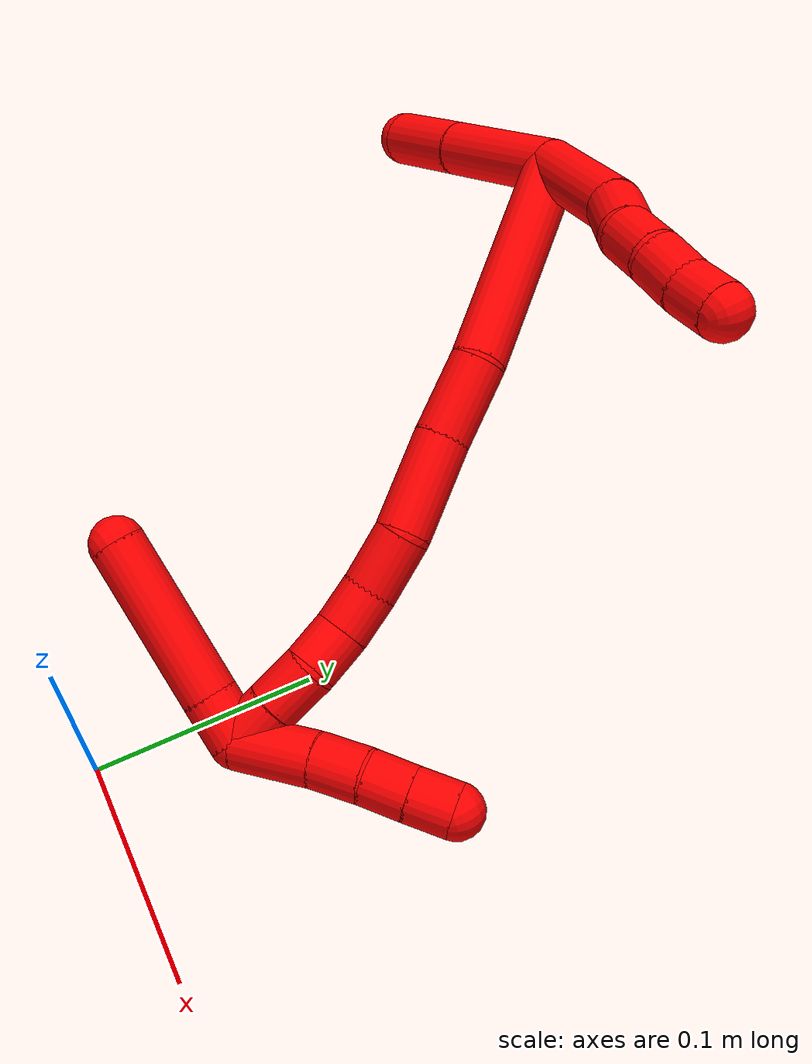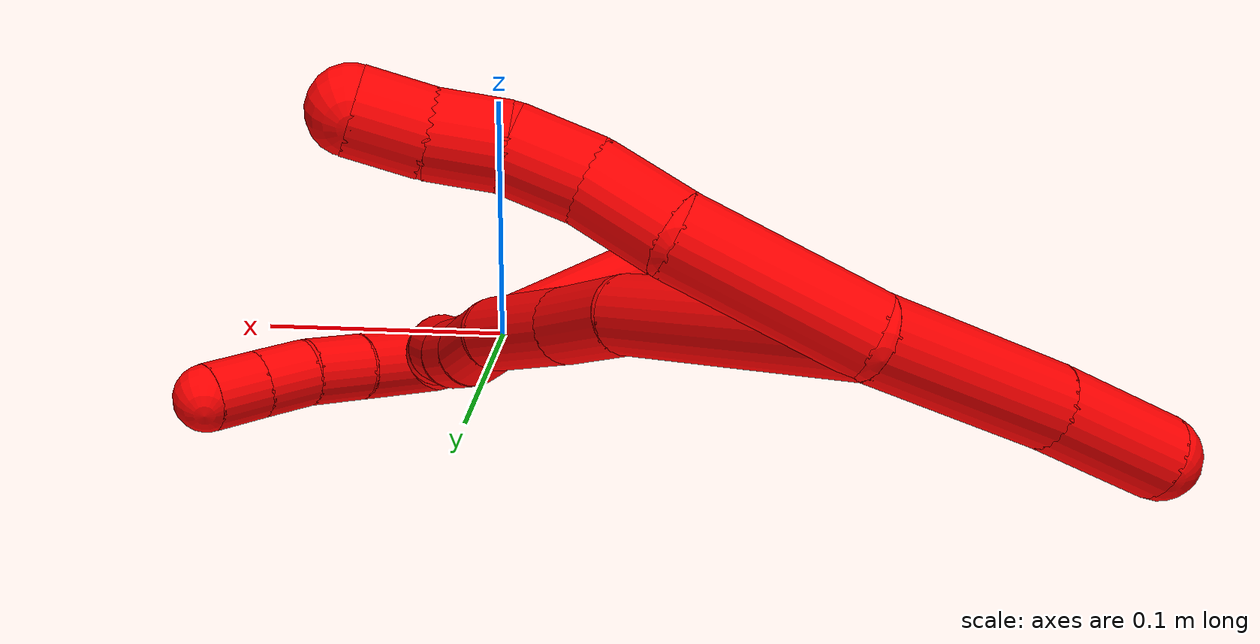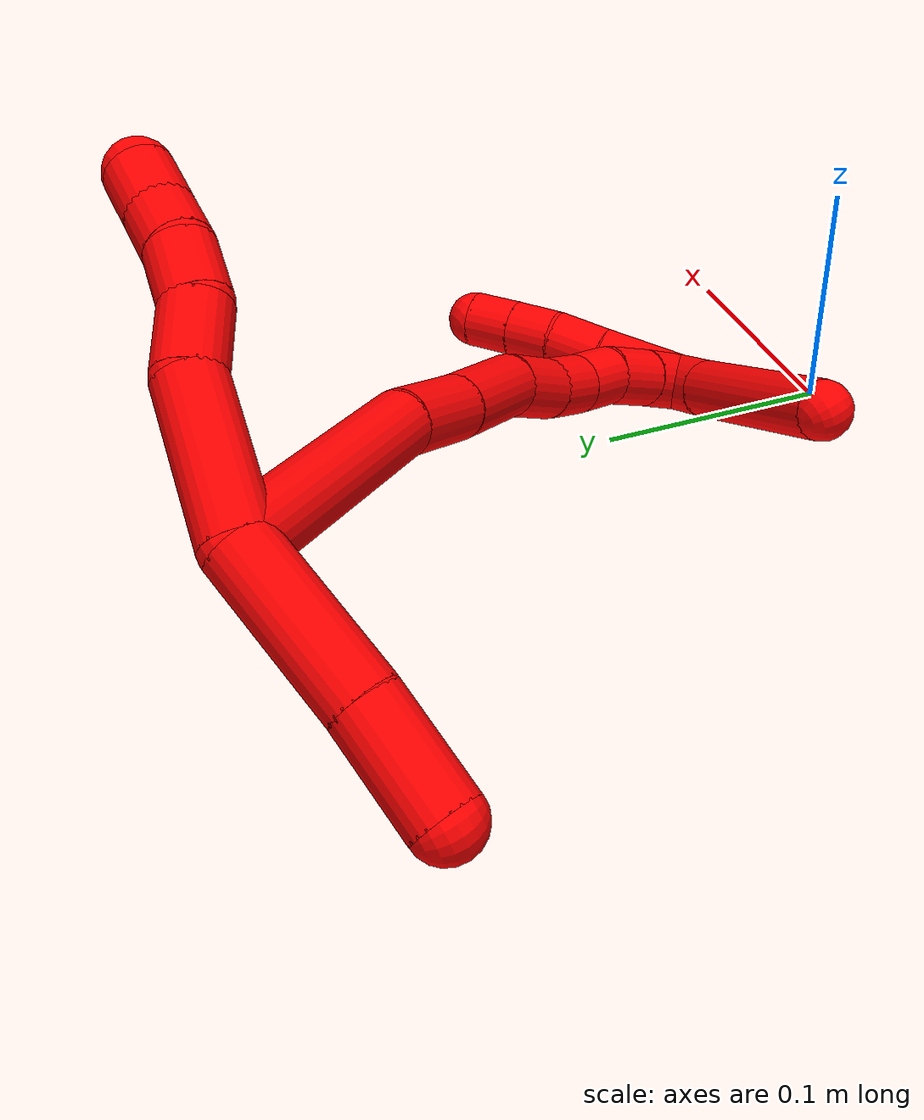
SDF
<sdf version="1.7">
 <world name="default">
  <model name="2">
   <static>0</static>
   <link name="2">
    <collision name="collision-cylinder-e_1_2_8">
     <pose>-0.000973 0.028131 -0.00752 -1.83202 -0.033415 0.043518</pose>
     <geometry><cylinder><radius>0.0125</radius><length>0.05827</length></cylinder></geometry>
     <surface>
      <friction><ode><mu>1.16</mu><mu2>1.16</mu2><slip1>0</slip1><slip2>0</slip2></ode></friction>
      <contact><ode><kp>1e+06</kp><kd>1</kd><max_vel>0</max_vel><min_depth>0.001</min_depth></ode></contact>
     </surface>
    </collision>
    <visual name="visual-cylinder-e_1_2_8">
     <pose>-0.000973 0.028131 -0.00752 -1.83202 -0.033415 0.043518</pose>
     <geometry><cylinder><radius>0.0125</radius><length>0.05827</length></cylinder></geometry>
     <material><ambient>1 0 0 1</ambient></material>
    </visual>
    <collision name="collision-cylinder-e_2_8_9">
     <pose>-0.002902 0.067425 -0.022447 -2.15658 -0.071163 0.132478</pose>
     <geometry><cylinder><radius>0.0125</radius><length>0.02686</length></cylinder></geometry>
     <surface>
      <friction><ode><mu>1.16</mu><mu2>1.16</mu2><slip1>0</slip1><slip2>0</slip2></ode></friction>
      <contact><ode><kp>1e+06</kp><kd>1</kd><max_vel>0</max_vel><min_depth>0.001</min_depth></ode></contact>
     </surface>
    </collision>
    <visual name="visual-cylinder-e_2_8_9">
     <pose>-0.002902 0.067425 -0.022447 -2.15658 -0.071163 0.132478</pose>
     <geometry><cylinder><radius>0.0125</radius><length>0.02686</length></cylinder></geometry>
     <material><ambient>1 0 0 1</ambient></material>
    </visual>
    <collision name="collision-cylinder-e_3_9_10">
     <pose>-0.005344 0.089792 -0.032908 -1.837 -0.12734 0.166552</pose>
     <geometry><cylinder><radius>0.0125</radius><length>0.023417</length></cylinder></geometry>
     <surface>
      <friction><ode><mu>1.16</mu><mu2>1.16</mu2><slip1>0</slip1><slip2>0</slip2></ode></friction>
      <contact><ode><kp>1e+06</kp><kd>1</kd><max_vel>0</max_vel><min_depth>0.001</min_depth></ode></contact>
     </surface>
    </collision>
    <visual name="visual-cylinder-e_3_9_10">
     <pose>-0.005344 0.089792 -0.032908 -1.837 -0.12734 0.166552</pose>
     <geometry><cylinder><radius>0.0125</radius><length>0.023417</length></cylinder></geometry>
     <material><ambient>1 0 0 1</ambient></material>
    </visual>
    <collision name="collision-cylinder-e_4_10_11">
     <pose>-0.010084 0.11074 -0.037347 -1.71189 -0.319242 0.366778</pose>
     <geometry><cylinder><radius>0.0125</radius><length>0.02073</length></cylinder></geometry>
     <surface>
      <friction><ode><mu>1.16</mu><mu2>1.16</mu2><slip1>0</slip1><slip2>0</slip2></ode></friction>
      <contact><ode><kp>1e+06</kp><kd>1</kd><max_vel>0</max_vel><min_depth>0.001</min_depth></ode></contact>
     </surface>
    </collision>
    <visual name="visual-cylinder-e_4_10_11">
     <pose>-0.010084 0.11074 -0.037347 -1.71189 -0.319242 0.366778</pose>
     <geometry><cylinder><radius>0.0125</radius><length>0.02073</length></cylinder></geometry>
     <material><ambient>1 0 0 1</ambient></material>
    </visual>
    <collision name="collision-cylinder-e_5_11_6">
     <pose>-0.015109 0.13062 -0.039945 -1.68997 -0.171958 0.193648</pose>
     <geometry><cylinder><radius>0.0125</radius><length>0.020722</length></cylinder></geometry>
     <surface>
      <friction><ode><mu>1.16</mu><mu2>1.16</mu2><slip1>0</slip1><slip2>0</slip2></ode></friction>
      <contact><ode><kp>1e+06</kp><kd>1</kd><max_vel>0</max_vel><min_depth>0.001</min_depth></ode></contact>
     </surface>
    </collision>
    <visual name="visual-cylinder-e_5_11_6">
     <pose>-0.015109 0.13062 -0.039945 -1.68997 -0.171958 0.193648</pose>
     <geometry><cylinder><radius>0.0125</radius><length>0.020722</length></cylinder></geometry>
     <material><ambient>1 0 0 1</ambient></material>
    </visual>
    <collision name="collision-cylinder-e_1_2_12">
     <pose>-0.000437 -0.029865 -0.003123 1.67499 -0.014545 -0.016145</pose>
     <geometry><cylinder><radius>0.0125</radius><length>0.060063</length></cylinder></geometry>
     <surface>
      <friction><ode><mu>1.16</mu><mu2>1.16</mu2><slip1>0</slip1><slip2>0</slip2></ode></friction>
      <contact><ode><kp>1e+06</kp><kd>1</kd><max_vel>0</max_vel><min_depth>0.001</min_depth></ode></contact>
     </surface>
    </collision>
    <visual name="visual-cylinder-e_1_2_12">
     <pose>-0.000437 -0.029865 -0.003123 1.67499 -0.014545 -0.016145</pose>
     <geometry><cylinder><radius>0.0125</radius><length>0.060063</length></cylinder></geometry>
     <material><ambient>1 0 0 1</ambient></material>
    </visual>
    <collision name="collision-cylinder-e_2_12_5">
     <pose>-0.001763 -0.079657 -0.007199 1.61859 -0.044575 -0.046757</pose>
     <geometry><cylinder><radius>0.0125</radius><length>0.039937</length></cylinder></geometry>
     <surface>
      <friction><ode><mu>1.16</mu><mu2>1.16</mu2><slip1>0</slip1><slip2>0</slip2></ode></friction>
      <contact><ode><kp>1e+06</kp><kd>1</kd><max_vel>0</max_vel><min_depth>0.001</min_depth></ode></contact>
     </surface>
    </collision>
    <visual name="visual-cylinder-e_2_12_5">
     <pose>-0.001763 -0.079657 -0.007199 1.61859 -0.044575 -0.046757</pose>
     <geometry><cylinder><radius>0.0125</radius><length>0.039937</length></cylinder></geometry>
     <material><ambient>1 0 0 1</ambient></material>
    </visual>
    <collision name="collision-cylinder-e_1_2_13">
     <pose>-0.02918 0.015947 -0.039053 -2.75392 -0.605164 2.0189</pose>
     <geometry><cylinder><radius>0.0125</radius><length>0.102585</length></cylinder></geometry>
     <surface>
      <friction><ode><mu>1.16</mu><mu2>1.16</mu2><slip1>0</slip1><slip2>0</slip2></ode></friction>
      <contact><ode><kp>1e+06</kp><kd>1</kd><max_vel>0</max_vel><min_depth>0.001</min_depth></ode></contact>
     </surface>
    </collision>
    <visual name="visual-cylinder-e_1_2_13">
     <pose>-0.02918 0.015947 -0.039053 -2.75392 -0.605164 2.0189</pose>
     <geometry><cylinder><radius>0.0125</radius><length>0.102585</length></cylinder></geometry>
     <material><ambient>1 0 0 1</ambient></material>
    </visual>
    <collision name="collision-cylinder-e_2_13_14">
     <pose>-0.070712 0.034296 -0.091981 -2.97014 -0.720036 2.69269</pose>
     <geometry><cylinder><radius>0.0125</radius><length>0.037462</length></cylinder></geometry>
     <surface>
      <friction><ode><mu>1.16</mu><mu2>1.16</mu2><slip1>0</slip1><slip2>0</slip2></ode></friction>
      <contact><ode><kp>1e+06</kp><kd>1</kd><max_vel>0</max_vel><min_depth>0.001</min_depth></ode></contact>
     </surface>
    </collision>
    <visual name="visual-cylinder-e_2_13_14">
     <pose>-0.070712 0.034296 -0.091981 -2.97014 -0.720036 2.69269</pose>
     <geometry><cylinder><radius>0.0125</radius><length>0.037462</length></cylinder></geometry>
     <material><ambient>1 0 0 1</ambient></material>
    </visual>
    <collision name="collision-cylinder-e_3_14_15">
     <pose>-0.097757 0.041059 -0.12231 -2.88251 -0.712123 2.46777</pose>
     <geometry><cylinder><radius>0.0125</radius><length>0.044973</length></cylinder></geometry>
     <surface>
      <friction><ode><mu>1.16</mu><mu2>1.16</mu2><slip1>0</slip1><slip2>0</slip2></ode></friction>
      <contact><ode><kp>1e+06</kp><kd>1</kd><max_vel>0</max_vel><min_depth>0.001</min_depth></ode></contact>
     </surface>
    </collision>
    <visual name="visual-cylinder-e_3_14_15">
     <pose>-0.097757 0.041059 -0.12231 -2.88251 -0.712123 2.46777</pose>
     <geometry><cylinder><radius>0.0125</radius><length>0.044973</length></cylinder></geometry>
     <material><ambient>1 0 0 1</ambient></material>
    </visual>
    <collision name="collision-cylinder-e_4_15_16">
     <pose>-0.122371 0.044511 -0.148613 3.04961 -0.786899 -2.92075</pose>
     <geometry><cylinder><radius>0.0125</radius><length>0.028017</length></cylinder></geometry>
     <surface>
      <friction><ode><mu>1.16</mu><mu2>1.16</mu2><slip1>0</slip1><slip2>0</slip2></ode></friction>
      <contact><ode><kp>1e+06</kp><kd>1</kd><max_vel>0</max_vel><min_depth>0.001</min_depth></ode></contact>
     </surface>
    </collision>
    <visual name="visual-cylinder-e_4_15_16">
     <pose>-0.122371 0.044511 -0.148613 3.04961 -0.786899 -2.92075</pose>
     <geometry><cylinder><radius>0.0125</radius><length>0.028017</length></cylinder></geometry>
     <material><ambient>1 0 0 1</ambient></material>
    </visual>
    <collision name="collision-cylinder-e_5_16_17">
     <pose>-0.138702 0.04353 -0.167041 3.13305 -0.641698 -3.11589</pose>
     <geometry><cylinder><radius>0.0125</radius><length>0.02142</length></cylinder></geometry>
     <surface>
      <friction><ode><mu>1.16</mu><mu2>1.16</mu2><slip1>0</slip1><slip2>0</slip2></ode></friction>
      <contact><ode><kp>1e+06</kp><kd>1</kd><max_vel>0</max_vel><min_depth>0.001</min_depth></ode></contact>
     </surface>
    </collision>
    <visual name="visual-cylinder-e_5_16_17">
     <pose>-0.138702 0.04353 -0.167041 3.13305 -0.641698 -3.11589</pose>
     <geometry><cylinder><radius>0.0125</radius><length>0.02142</length></cylinder></geometry>
     <material><ambient>1 0 0 1</ambient></material>
    </visual>
    <collision name="collision-cylinder-e_6_17_18">
     <pose>-0.149998 0.0434 -0.184772 3.13539 -0.490349 -3.11681</pose>
     <geometry><cylinder><radius>0.0125</radius><length>0.02075</length></cylinder></geometry>
     <surface>
      <friction><ode><mu>1.16</mu><mu2>1.16</mu2><slip1>0</slip1><slip2>0</slip2></ode></friction>
      <contact><ode><kp>1e+06</kp><kd>1</kd><max_vel>0</max_vel><min_depth>0.001</min_depth></ode></contact>
     </surface>
    </collision>
    <visual name="visual-cylinder-e_6_17_18">
     <pose>-0.149998 0.0434 -0.184772 3.13539 -0.490349 -3.11681</pose>
     <geometry><cylinder><radius>0.0125</radius><length>0.02075</length></cylinder></geometry>
     <material><ambient>1 0 0 1</ambient></material>
    </visual>
    <collision name="collision-cylinder-e_7_18_19">
     <pose>-0.161054 0.040758 -0.203255 2.87134 -0.567393 -2.26893</pose>
     <geometry><cylinder><radius>0.0125</radius><length>0.022961</length></cylinder></geometry>
     <surface>
      <friction><ode><mu>1.16</mu><mu2>1.16</mu2><slip1>0</slip1><slip2>0</slip2></ode></friction>
      <contact><ode><kp>1e+06</kp><kd>1</kd><max_vel>0</max_vel><min_depth>0.001</min_depth></ode></contact>
     </surface>
    </collision>
    <visual name="visual-cylinder-e_7_18_19">
     <pose>-0.161054 0.040758 -0.203255 2.87134 -0.567393 -2.26893</pose>
     <geometry><cylinder><radius>0.0125</radius><length>0.022961</length></cylinder></geometry>
     <material><ambient>1 0 0 1</ambient></material>
    </visual>
    <collision name="collision-cylinder-e_8_19_1">
     <pose>-0.173407 0.03556 -0.221194 2.84692 -0.602089 -2.24979</pose>
     <geometry><cylinder><radius>0.0125</radius><length>0.021831</length></cylinder></geometry>
     <surface>
      <friction><ode><mu>1.16</mu><mu2>1.16</mu2><slip1>0</slip1><slip2>0</slip2></ode></friction>
      <contact><ode><kp>1e+06</kp><kd>1</kd><max_vel>0</max_vel><min_depth>0.001</min_depth></ode></contact>
     </surface>
    </collision>
    <visual name="visual-cylinder-e_8_19_1">
     <pose>-0.173407 0.03556 -0.221194 2.84692 -0.602089 -2.24979</pose>
     <geometry><cylinder><radius>0.0125</radius><length>0.021831</length></cylinder></geometry>
     <material><ambient>1 0 0 1</ambient></material>
    </visual>
    <collision name="collision-cylinder-e_1_1_20">
     <pose>-0.181747 0.048135 -0.219862 -0.991234 -0.11835 0.064036</pose>
     <geometry><cylinder><radius>0.0125</radius><length>0.036558</length></cylinder></geometry>
     <surface>
      <friction><ode><mu>1.16</mu><mu2>1.16</mu2><slip1>0</slip1><slip2>0</slip2></ode></friction>
      <contact><ode><kp>1e+06</kp><kd>1</kd><max_vel>0</max_vel><min_depth>0.001</min_depth></ode></contact>
     </surface>
    </collision>
    <visual name="visual-cylinder-e_1_1_20">
     <pose>-0.181747 0.048135 -0.219862 -0.991234 -0.11835 0.064036</pose>
     <geometry><cylinder><radius>0.0125</radius><length>0.036558</length></cylinder></geometry>
     <material><ambient>1 0 0 1</ambient></material>
    </visual>
    <collision name="collision-cylinder-e_2_20_21">
     <pose>-0.18592 0.073139 -0.20431 -1.0515 -0.176284 0.10246</pose>
     <geometry><cylinder><radius>0.0125</radius><length>0.02297</length></cylinder></geometry>
     <surface>
      <friction><ode><mu>1.16</mu><mu2>1.16</mu2><slip1>0</slip1><slip2>0</slip2></ode></friction>
      <contact><ode><kp>1e+06</kp><kd>1</kd><max_vel>0</max_vel><min_depth>0.001</min_depth></ode></contact>
     </surface>
    </collision>
    <visual name="visual-cylinder-e_2_20_21">
     <pose>-0.18592 0.073139 -0.20431 -1.0515 -0.176284 0.10246</pose>
     <geometry><cylinder><radius>0.0125</radius><length>0.02297</length></cylinder></geometry>
     <material><ambient>1 0 0 1</ambient></material>
    </visual>
    <collision name="collision-cylinder-e_3_21_22">
     <pose>-0.191003 0.091106 -0.193539 -1.00647 -0.307996 0.170494</pose>
     <geometry><cylinder><radius>0.0125</radius><length>0.020246</length></cylinder></geometry>
     <surface>
      <friction><ode><mu>1.16</mu><mu2>1.16</mu2><slip1>0</slip1><slip2>0</slip2></ode></friction>
      <contact><ode><kp>1e+06</kp><kd>1</kd><max_vel>0</max_vel><min_depth>0.001</min_depth></ode></contact>
     </surface>
    </collision>
    <visual name="visual-cylinder-e_3_21_22">
     <pose>-0.191003 0.091106 -0.193539 -1.00647 -0.307996 0.170494</pose>
     <geometry><cylinder><radius>0.0125</radius><length>0.020246</length></cylinder></geometry>
     <material><ambient>1 0 0 1</ambient></material>
    </visual>
    <collision name="collision-cylinder-e_4_22_4">
     <pose>-0.197059 0.107302 -0.18303 -0.984033 -0.299912 0.16161</pose>
     <geometry><cylinder><radius>0.0125</radius><length>0.020225</length></cylinder></geometry>
     <surface>
      <friction><ode><mu>1.16</mu><mu2>1.16</mu2><slip1>0</slip1><slip2>0</slip2></ode></friction>
      <contact><ode><kp>1e+06</kp><kd>1</kd><max_vel>0</max_vel><min_depth>0.001</min_depth></ode></contact>
     </surface>
    </collision>
    <visual name="visual-cylinder-e_4_22_4">
     <pose>-0.197059 0.107302 -0.18303 -0.984033 -0.299912 0.16161</pose>
     <geometry><cylinder><radius>0.0125</radius><length>0.020225</length></cylinder></geometry>
     <material><ambient>1 0 0 1</ambient></material>
    </visual>
    <collision name="collision-cylinder-e_1_1_23">
     <pose>-0.171182 0.025439 -0.230403 1.65061 0.840194 0.901274</pose>
     <geometry><cylinder><radius>0.0125</radius><length>0.022576</length></cylinder></geometry>
     <surface>
      <friction><ode><mu>1.16</mu><mu2>1.16</mu2><slip1>0</slip1><slip2>0</slip2></ode></friction>
      <contact><ode><kp>1e+06</kp><kd>1</kd><max_vel>0</max_vel><min_depth>0.001</min_depth></ode></contact>
     </surface>
    </collision>
    <visual name="visual-cylinder-e_1_1_23">
     <pose>-0.171182 0.025439 -0.230403 1.65061 0.840194 0.901274</pose>
     <geometry><cylinder><radius>0.0125</radius><length>0.022576</length></cylinder></geometry>
     <material><ambient>1 0 0 1</ambient></material>
    </visual>
    <collision name="collision-cylinder-e_2_23_3">
     <pose>-0.133038 -0.006756 -0.233211 1.65999 0.875982 0.946529</pose>
     <geometry><cylinder><radius>0.0125</radius><length>0.077424</length></cylinder></geometry>
     <surface>
      <friction><ode><mu>1.16</mu><mu2>1.16</mu2><slip1>0</slip1><slip2>0</slip2></ode></friction>
      <contact><ode><kp>1e+06</kp><kd>1</kd><max_vel>0</max_vel><min_depth>0.001</min_depth></ode></contact>
     </surface>
    </collision>
    <visual name="visual-cylinder-e_2_23_3">
     <pose>-0.133038 -0.006756 -0.233211 1.65999 0.875982 0.946529</pose>
     <geometry><cylinder><radius>0.0125</radius><length>0.077424</length></cylinder></geometry>
     <material><ambient>1 0 0 1</ambient></material>
    </visual>
    <collision name="collision-sphere-3">
     <pose>-0.1033 -0.031443 -0.235419 0 -0 0</pose>
     <geometry><sphere><radius>0.0125</radius></sphere></geometry>
     <surface>
      <friction><ode><mu>1.16</mu><mu2>1.16</mu2><slip1>0</slip1><slip2>0</slip2></ode></friction>
      <contact><ode><kp>1e+06</kp><kd>1</kd><max_vel>0</max_vel><min_depth>0.001</min_depth></ode></contact>
     </surface>
    </collision>
    <visual name="visual-sphere-3">
     <pose>-0.1033 -0.031443 -0.235419 0 -0 0</pose>
     <geometry><sphere><radius>0.0125</radius></sphere></geometry>
     <material><ambient>1 0 0 1</ambient></material>
    </visual>
    <collision name="collision-sphere-23">
     <pose>-0.162775 0.01793 -0.231003 0 -0 0</pose>
     <geometry><sphere><radius>0.0125</radius></sphere></geometry>
     <surface>
      <friction><ode><mu>1.16</mu><mu2>1.16</mu2><slip1>0</slip1><slip2>0</slip2></ode></friction>
      <contact><ode><kp>1e+06</kp><kd>1</kd><max_vel>0</max_vel><min_depth>0.001</min_depth></ode></contact>
     </surface>
    </collision>
    <visual name="visual-sphere-23">
     <pose>-0.162775 0.01793 -0.231003 0 -0 0</pose>
     <geometry><sphere><radius>0.0125</radius></sphere></geometry>
     <material><ambient>1 0 0 1</ambient></material>
    </visual>
    <collision name="collision-sphere-4">
     <pose>-0.200047 0.115348 -0.177681 0 -0 0</pose>
     <geometry><sphere><radius>0.0125</radius></sphere></geometry>
     <surface>
      <friction><ode><mu>1.16</mu><mu2>1.16</mu2><slip1>0</slip1><slip2>0</slip2></ode></friction>
      <contact><ode><kp>1e+06</kp><kd>1</kd><max_vel>0</max_vel><min_depth>0.001</min_depth></ode></contact>
     </surface>
    </collision>
    <visual name="visual-sphere-4">
     <pose>-0.200047 0.115348 -0.177681 0 -0 0</pose>
     <geometry><sphere><radius>0.0125</radius></sphere></geometry>
     <material><ambient>1 0 0 1</ambient></material>
    </visual>
    <collision name="collision-sphere-22">
     <pose>-0.194072 0.099257 -0.188379 0 -0 0</pose>
     <geometry><sphere><radius>0.0125</radius></sphere></geometry>
     <surface>
      <friction><ode><mu>1.16</mu><mu2>1.16</mu2><slip1>0</slip1><slip2>0</slip2></ode></friction>
      <contact><ode><kp>1e+06</kp><kd>1</kd><max_vel>0</max_vel><min_depth>0.001</min_depth></ode></contact>
     </surface>
    </collision>
    <visual name="visual-sphere-22">
     <pose>-0.194072 0.099257 -0.188379 0 -0 0</pose>
     <geometry><sphere><radius>0.0125</radius></sphere></geometry>
     <material><ambient>1 0 0 1</ambient></material>
    </visual>
    <collision name="collision-sphere-21">
     <pose>-0.187934 0.082955 -0.198698 0 -0 0</pose>
     <geometry><sphere><radius>0.0125</radius></sphere></geometry>
     <surface>
      <friction><ode><mu>1.16</mu><mu2>1.16</mu2><slip1>0</slip1><slip2>0</slip2></ode></friction>
      <contact><ode><kp>1e+06</kp><kd>1</kd><max_vel>0</max_vel><min_depth>0.001</min_depth></ode></contact>
     </surface>
    </collision>
    <visual name="visual-sphere-21">
     <pose>-0.187934 0.082955 -0.198698 0 -0 0</pose>
     <geometry><sphere><radius>0.0125</radius></sphere></geometry>
     <material><ambient>1 0 0 1</ambient></material>
    </visual>
    <collision name="collision-sphere-20">
     <pose>-0.183906 0.063322 -0.209921 0 -0 0</pose>
     <geometry><sphere><radius>0.0125</radius></sphere></geometry>
     <surface>
      <friction><ode><mu>1.16</mu><mu2>1.16</mu2><slip1>0</slip1><slip2>0</slip2></ode></friction>
      <contact><ode><kp>1e+06</kp><kd>1</kd><max_vel>0</max_vel><min_depth>0.001</min_depth></ode></contact>
     </surface>
    </collision>
    <visual name="visual-sphere-20">
     <pose>-0.183906 0.063322 -0.209921 0 -0 0</pose>
     <geometry><sphere><radius>0.0125</radius></sphere></geometry>
     <material><ambient>1 0 0 1</ambient></material>
    </visual>
    <collision name="collision-sphere-6">
     <pose>-0.016882 0.140756 -0.041159 0 -0 0</pose>
     <geometry><sphere><radius>0.0125</radius></sphere></geometry>
     <surface>
      <friction><ode><mu>1.16</mu><mu2>1.16</mu2><slip1>0</slip1><slip2>0</slip2></ode></friction>
      <contact><ode><kp>1e+06</kp><kd>1</kd><max_vel>0</max_vel><min_depth>0.001</min_depth></ode></contact>
     </surface>
    </collision>
    <visual name="visual-sphere-6">
     <pose>-0.016882 0.140756 -0.041159 0 -0 0</pose>
     <geometry><sphere><radius>0.0125</radius></sphere></geometry>
     <material><ambient>1 0 0 1</ambient></material>
    </visual>
    <collision name="collision-sphere-11">
     <pose>-0.013337 0.120484 -0.038731 0 -0 0</pose>
     <geometry><sphere><radius>0.0125</radius></sphere></geometry>
     <surface>
      <friction><ode><mu>1.16</mu><mu2>1.16</mu2><slip1>0</slip1><slip2>0</slip2></ode></friction>
      <contact><ode><kp>1e+06</kp><kd>1</kd><max_vel>0</max_vel><min_depth>0.001</min_depth></ode></contact>
     </surface>
    </collision>
    <visual name="visual-sphere-11">
     <pose>-0.013337 0.120484 -0.038731 0 -0 0</pose>
     <geometry><sphere><radius>0.0125</radius></sphere></geometry>
     <material><ambient>1 0 0 1</ambient></material>
    </visual>
    <collision name="collision-sphere-10">
     <pose>-0.00683 0.100997 -0.035963 0 -0 0</pose>
     <geometry><sphere><radius>0.0125</radius></sphere></geometry>
     <surface>
      <friction><ode><mu>1.16</mu><mu2>1.16</mu2><slip1>0</slip1><slip2>0</slip2></ode></friction>
      <contact><ode><kp>1e+06</kp><kd>1</kd><max_vel>0</max_vel><min_depth>0.001</min_depth></ode></contact>
     </surface>
    </collision>
    <visual name="visual-sphere-10">
     <pose>-0.00683 0.100997 -0.035963 0 -0 0</pose>
     <geometry><sphere><radius>0.0125</radius></sphere></geometry>
     <material><ambient>1 0 0 1</ambient></material>
    </visual>
    <collision name="collision-sphere-9">
     <pose>-0.003857 0.078587 -0.029853 0 -0 0</pose>
     <geometry><sphere><radius>0.0125</radius></sphere></geometry>
     <surface>
      <friction><ode><mu>1.16</mu><mu2>1.16</mu2><slip1>0</slip1><slip2>0</slip2></ode></friction>
      <contact><ode><kp>1e+06</kp><kd>1</kd><max_vel>0</max_vel><min_depth>0.001</min_depth></ode></contact>
     </surface>
    </collision>
    <visual name="visual-sphere-9">
     <pose>-0.003857 0.078587 -0.029853 0 -0 0</pose>
     <geometry><sphere><radius>0.0125</radius></sphere></geometry>
     <material><ambient>1 0 0 1</ambient></material>
    </visual>
    <collision name="collision-sphere-2">
     <geometry><sphere><radius>0.0125</radius></sphere></geometry>
     <surface>
      <friction><ode><mu>1.16</mu><mu2>1.16</mu2><slip1>0</slip1><slip2>0</slip2></ode></friction>
      <contact><ode><kp>1e+06</kp><kd>1</kd><max_vel>0</max_vel><min_depth>0.001</min_depth></ode></contact>
     </surface>
    </collision>
    <visual name="visual-sphere-2">
     <geometry><sphere><radius>0.0125</radius></sphere></geometry>
     <material><ambient>1 0 0 1</ambient></material>
    </visual>
    <collision name="collision-sphere-19">
     <pose>-0.167225 0.038173 -0.212585 0 -0 0</pose>
     <geometry><sphere><radius>0.0125</radius></sphere></geometry>
     <surface>
      <friction><ode><mu>1.16</mu><mu2>1.16</mu2><slip1>0</slip1><slip2>0</slip2></ode></friction>
      <contact><ode><kp>1e+06</kp><kd>1</kd><max_vel>0</max_vel><min_depth>0.001</min_depth></ode></contact>
     </surface>
    </collision>
    <visual name="visual-sphere-19">
     <pose>-0.167225 0.038173 -0.212585 0 -0 0</pose>
     <geometry><sphere><radius>0.0125</radius></sphere></geometry>
     <material><ambient>1 0 0 1</ambient></material>
    </visual>
    <collision name="collision-sphere-8">
     <pose>-0.001947 0.056262 -0.015041 0 -0 0</pose>
     <geometry><sphere><radius>0.0125</radius></sphere></geometry>
     <surface>
      <friction><ode><mu>1.16</mu><mu2>1.16</mu2><slip1>0</slip1><slip2>0</slip2></ode></friction>
      <contact><ode><kp>1e+06</kp><kd>1</kd><max_vel>0</max_vel><min_depth>0.001</min_depth></ode></contact>
     </surface>
    </collision>
    <visual name="visual-sphere-8">
     <pose>-0.001947 0.056262 -0.015041 0 -0 0</pose>
     <geometry><sphere><radius>0.0125</radius></sphere></geometry>
     <material><ambient>1 0 0 1</ambient></material>
    </visual>
    <collision name="collision-sphere-12">
     <pose>-0.000874 -0.059731 -0.006246 0 -0 0</pose>
     <geometry><sphere><radius>0.0125</radius></sphere></geometry>
     <surface>
      <friction><ode><mu>1.16</mu><mu2>1.16</mu2><slip1>0</slip1><slip2>0</slip2></ode></friction>
      <contact><ode><kp>1e+06</kp><kd>1</kd><max_vel>0</max_vel><min_depth>0.001</min_depth></ode></contact>
     </surface>
    </collision>
    <visual name="visual-sphere-12">
     <pose>-0.000874 -0.059731 -0.006246 0 -0 0</pose>
     <geometry><sphere><radius>0.0125</radius></sphere></geometry>
     <material><ambient>1 0 0 1</ambient></material>
    </visual>
    <collision name="collision-sphere-5">
     <pose>-0.002653 -0.099583 -0.008153 0 -0 0</pose>
     <geometry><sphere><radius>0.0125</radius></sphere></geometry>
     <surface>
      <friction><ode><mu>1.16</mu><mu2>1.16</mu2><slip1>0</slip1><slip2>0</slip2></ode></friction>
      <contact><ode><kp>1e+06</kp><kd>1</kd><max_vel>0</max_vel><min_depth>0.001</min_depth></ode></contact>
     </surface>
    </collision>
    <visual name="visual-sphere-5">
     <pose>-0.002653 -0.099583 -0.008153 0 -0 0</pose>
     <geometry><sphere><radius>0.0125</radius></sphere></geometry>
     <material><ambient>1 0 0 1</ambient></material>
    </visual>
    <collision name="collision-sphere-13">
     <pose>-0.05836 0.031893 -0.078106 0 -0 0</pose>
     <geometry><sphere><radius>0.0125</radius></sphere></geometry>
     <surface>
      <friction><ode><mu>1.16</mu><mu2>1.16</mu2><slip1>0</slip1><slip2>0</slip2></ode></friction>
      <contact><ode><kp>1e+06</kp><kd>1</kd><max_vel>0</max_vel><min_depth>0.001</min_depth></ode></contact>
     </surface>
    </collision>
    <visual name="visual-sphere-13">
     <pose>-0.05836 0.031893 -0.078106 0 -0 0</pose>
     <geometry><sphere><radius>0.0125</radius></sphere></geometry>
     <material><ambient>1 0 0 1</ambient></material>
    </visual>
    <collision name="collision-sphere-14">
     <pose>-0.083063 0.036698 -0.105856 0 -0 0</pose>
     <geometry><sphere><radius>0.0125</radius></sphere></geometry>
     <surface>
      <friction><ode><mu>1.16</mu><mu2>1.16</mu2><slip1>0</slip1><slip2>0</slip2></ode></friction>
      <contact><ode><kp>1e+06</kp><kd>1</kd><max_vel>0</max_vel><min_depth>0.001</min_depth></ode></contact>
     </surface>
    </collision>
    <visual name="visual-sphere-14">
     <pose>-0.083063 0.036698 -0.105856 0 -0 0</pose>
     <geometry><sphere><radius>0.0125</radius></sphere></geometry>
     <material><ambient>1 0 0 1</ambient></material>
    </visual>
    <collision name="collision-sphere-15">
     <pose>-0.11245 0.04542 -0.138764 0 -0 0</pose>
     <geometry><sphere><radius>0.0125</radius></sphere></geometry>
     <surface>
      <friction><ode><mu>1.16</mu><mu2>1.16</mu2><slip1>0</slip1><slip2>0</slip2></ode></friction>
      <contact><ode><kp>1e+06</kp><kd>1</kd><max_vel>0</max_vel><min_depth>0.001</min_depth></ode></contact>
     </surface>
    </collision>
    <visual name="visual-sphere-15">
     <pose>-0.11245 0.04542 -0.138764 0 -0 0</pose>
     <geometry><sphere><radius>0.0125</radius></sphere></geometry>
     <material><ambient>1 0 0 1</ambient></material>
    </visual>
    <collision name="collision-sphere-16">
     <pose>-0.132292 0.043603 -0.158462 0 -0 0</pose>
     <geometry><sphere><radius>0.0125</radius></sphere></geometry>
     <surface>
      <friction><ode><mu>1.16</mu><mu2>1.16</mu2><slip1>0</slip1><slip2>0</slip2></ode></friction>
      <contact><ode><kp>1e+06</kp><kd>1</kd><max_vel>0</max_vel><min_depth>0.001</min_depth></ode></contact>
     </surface>
    </collision>
    <visual name="visual-sphere-16">
     <pose>-0.132292 0.043603 -0.158462 0 -0 0</pose>
     <geometry><sphere><radius>0.0125</radius></sphere></geometry>
     <material><ambient>1 0 0 1</ambient></material>
    </visual>
    <collision name="collision-sphere-17">
     <pose>-0.145112 0.043456 -0.17562 0 -0 0</pose>
     <geometry><sphere><radius>0.0125</radius></sphere></geometry>
     <surface>
      <friction><ode><mu>1.16</mu><mu2>1.16</mu2><slip1>0</slip1><slip2>0</slip2></ode></friction>
      <contact><ode><kp>1e+06</kp><kd>1</kd><max_vel>0</max_vel><min_depth>0.001</min_depth></ode></contact>
     </surface>
    </collision>
    <visual name="visual-sphere-17">
     <pose>-0.145112 0.043456 -0.17562 0 -0 0</pose>
     <geometry><sphere><radius>0.0125</radius></sphere></geometry>
     <material><ambient>1 0 0 1</ambient></material>
    </visual>
    <collision name="collision-sphere-18">
     <pose>-0.154884 0.043343 -0.193925 0 -0 0</pose>
     <geometry><sphere><radius>0.0125</radius></sphere></geometry>
     <surface>
      <friction><ode><mu>1.16</mu><mu2>1.16</mu2><slip1>0</slip1><slip2>0</slip2></ode></friction>
      <contact><ode><kp>1e+06</kp><kd>1</kd><max_vel>0</max_vel><min_depth>0.001</min_depth></ode></contact>
     </surface>
    </collision>
    <visual name="visual-sphere-18">
     <pose>-0.154884 0.043343 -0.193925 0 -0 0</pose>
     <geometry><sphere><radius>0.0125</radius></sphere></geometry>
     <material><ambient>1 0 0 1</ambient></material>
    </visual>
    <collision name="collision-sphere-1">
     <pose>-0.179589 0.032948 -0.229802 0 -0 0</pose>
     <geometry><sphere><radius>0.0125</radius></sphere></geometry>
     <surface>
      <friction><ode><mu>1.16</mu><mu2>1.16</mu2><slip1>0</slip1><slip2>0</slip2></ode></friction>
      <contact><ode><kp>1e+06</kp><kd>1</kd><max_vel>0</max_vel><min_depth>0.001</min_depth></ode></contact>
     </surface>
    </collision>
    <visual name="visual-sphere-1">
     <pose>-0.179589 0.032948 -0.229802 0 -0 0</pose>
     <geometry><sphere><radius>0.0125</radius></sphere></geometry>
     <material><ambient>1 0 0 1</ambient></material>
    </visual>
    <inertial>
     <pose>-0.081128 0.030194 -0.108696 0 -0 0</pose>
     <mass>0.75</mass>
     <inertia>
      <ixx>0.000118</ixx>
      <ixy>0</ixy>
      <ixz>0</ixz>
      <iyy>0.000205</iyy>
      <iyz>0</iyz>
      <izz>1.2e-05</izz>
     </inertia>
    </inertial>
   </link>
   <pose>-0.140774 0.287394 0.105862 1.99498 -1.05863 2.96226</pose>
  </model>
 </world>
</sdf>
